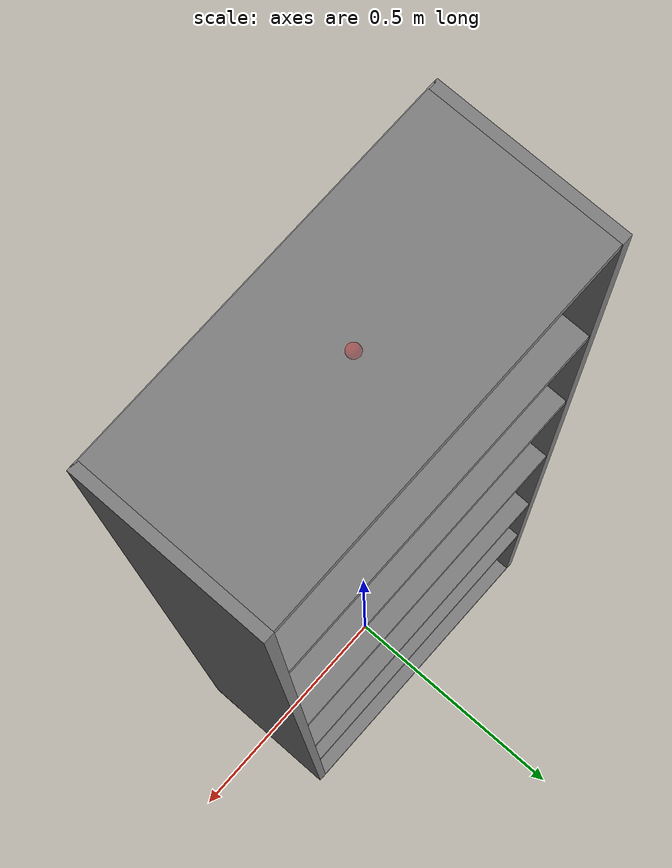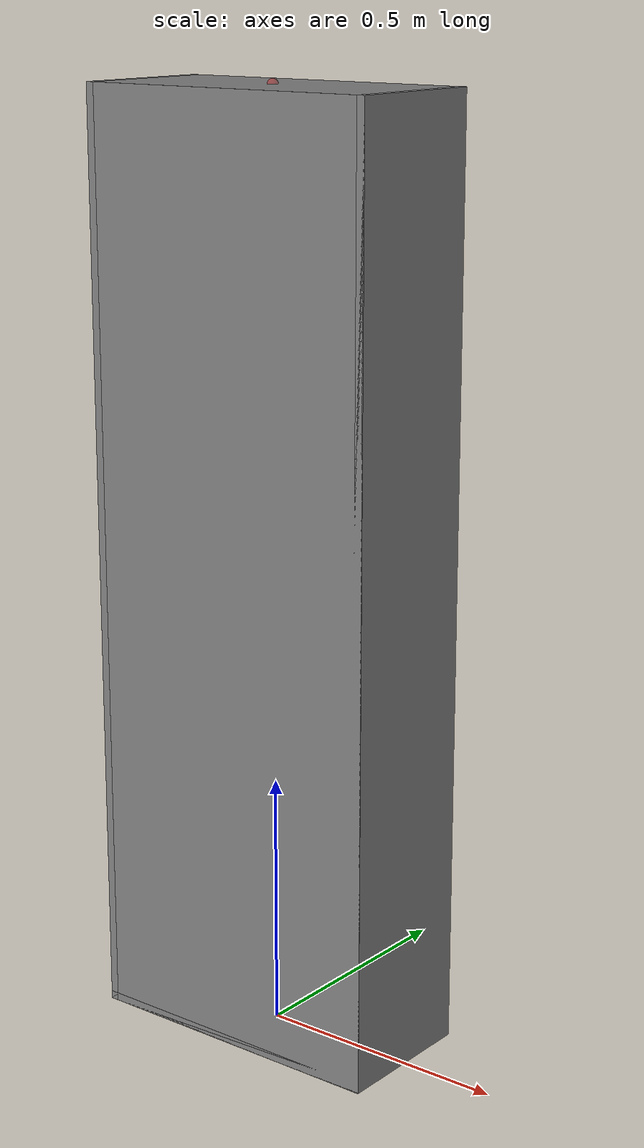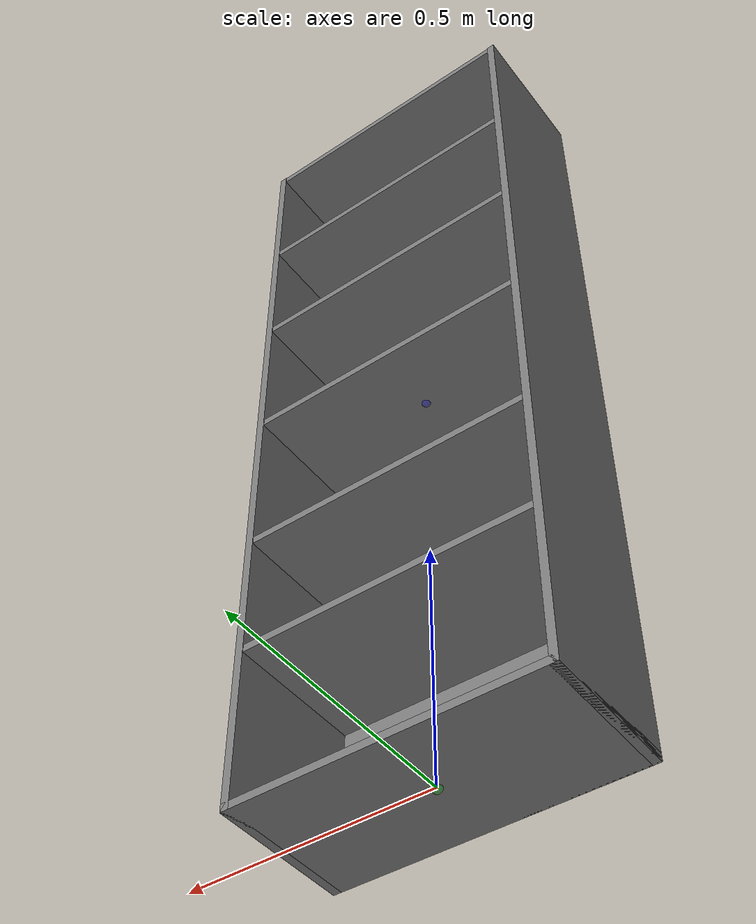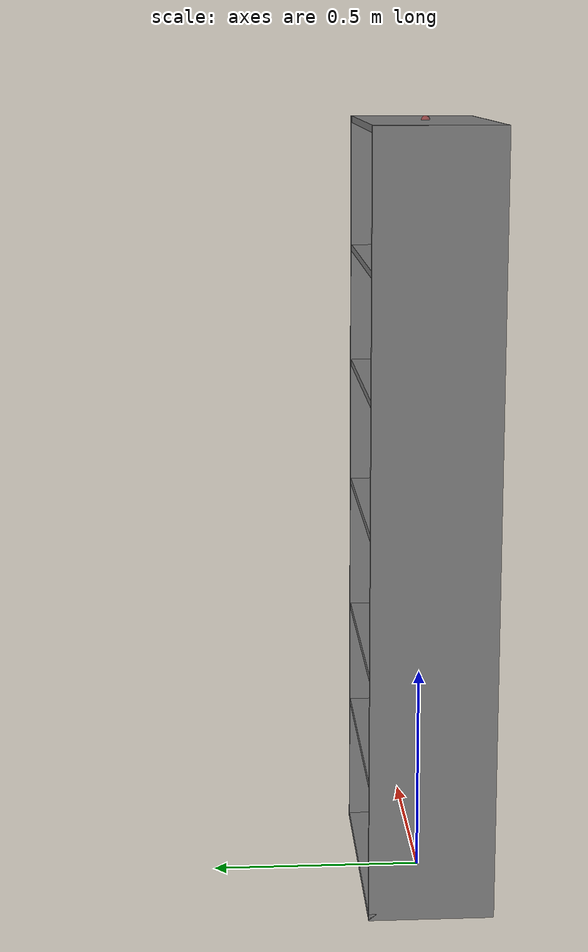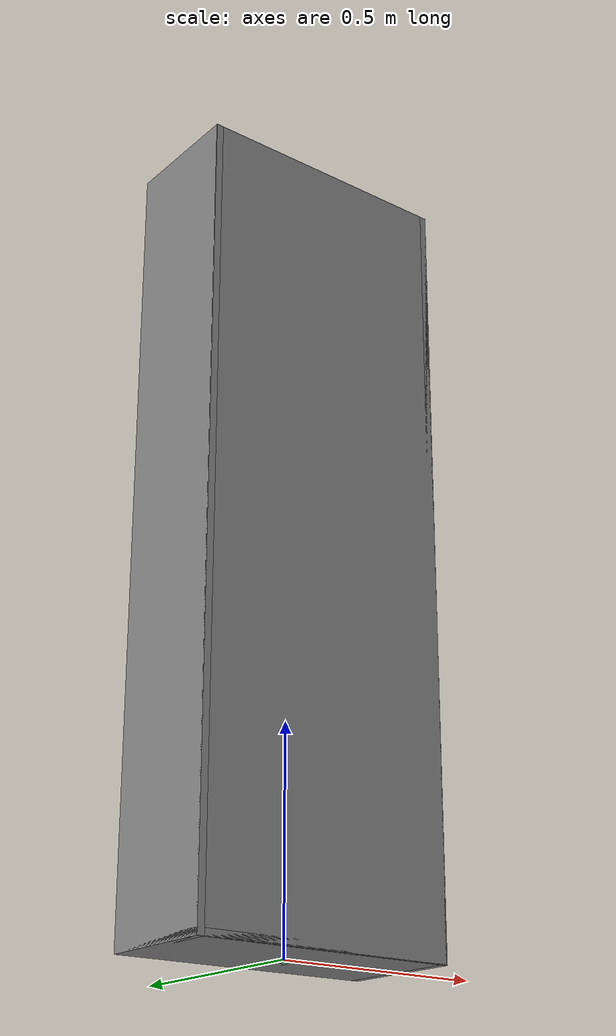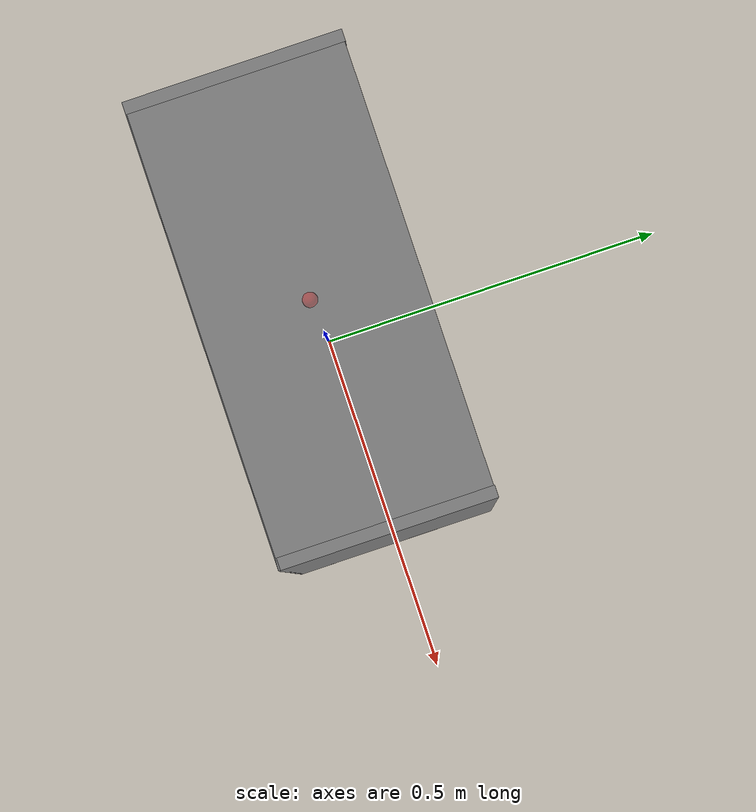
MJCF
<mujoco model="lab_shelf">
  <default>
    <default class="visual">
      <geom group="1" type="box" contype="0" conaffinity="0" density="100"/>
    </default>
    <default class="collision">
      <geom group="0" type="box" density="100" solimp="0.95 0.98 0.001" solref="0.004 1" rgba="1 1 1 0.25"/>
    </default>
    <default class="spawn">
      <geom group="1" rgba="1 1 1 0" contype="0" conaffinity="0" density="0" mass="0"/>
    </default>
  </default>

  <asset>
    <texture name="white_tex" builtin="flat" rgb1="1 1 1" rgb2="1 1 1" width="32" height="32"/>
    <material name="white_mat" texture="white_tex" shininess="0.2" reflectance="0.05" rgba="1 1 1 1"/>
  </asset>

  <!-- H = 1.80797 m; shelf z tops = 0.3317, 0.5888, 0.9159, 1.2174, 1.5001, 1.8080 -->
  <worldbody>
    <body>
      <body name="object">
        <!-- Sides (centered at H/2) -->
        <geom class="collision" name="side_left" size="0.008255 0.146050 0.903985" pos="-0.302895 0 0.903985"/>
        <geom class="visual"   name="side_left_vis" size="0.008255 0.146050 0.903985" pos="-0.302895 0 0.903985"/>
        <geom class="collision" name="side_right" size="0.008255 0.146050 0.903985" pos="0.302895 0 0.903985"/>
        <geom class="visual"   name="side_right_vis" size="0.008255 0.146050 0.903985" pos="0.302895 0 0.903985"/>

        <!-- Bottom panel (sits on floor) -->
        <geom class="collision" name="bottom" size="0.311150 0.146050 0.007938" pos="0 0 0.007938"/>
        <geom class="visual"   name="bottom_vis" size="0.311150 0.146050 0.007938" pos="0 0 0.007938"/>

        <!-- Back panel -->
        <geom class="collision" name="back" size="0.311150 0.001270 0.903985" pos="0 -0.144780 0.903985"/>
        <geom class="visual"   name="back_vis" size="0.311150 0.001270 0.903985" pos="0 -0.144780 0.903985"/>

        <!-- Interior shelves (6 total) -->
        <!-- Shelf half-sizes: x=0.294640, y=0.144780, z=0.007938 -->
        <geom class="collision" name="level_1" size="0.294640 0.144780 0.007938" pos="0 0 0.323787"/>
        <geom class="visual"   name="level_1_vis" size="0.294640 0.144780 0.007938" pos="0 0 0.323787"/>

        <geom class="collision" name="level_2" size="0.294640 0.144780 0.007938" pos="0 0 0.580834"/>
        <geom class="visual"   name="level_2_vis" size="0.294640 0.144780 0.007938" pos="0 0 0.580834"/>

        <geom class="collision" name="level_3" size="0.294640 0.144780 0.007938" pos="0 0 0.907987"/>
        <geom class="visual"   name="level_3_vis" size="0.294640 0.144780 0.007938" pos="0 0 0.907987"/>

        <geom class="collision" name="level_4" size="0.294640 0.144780 0.007938" pos="0 0 1.209485"/>
        <geom class="visual"   name="level_4_vis" size="0.294640 0.144780 0.007938" pos="0 0 1.209485"/>

        <geom class="collision" name="level_5" size="0.294640 0.144780 0.007938" pos="0 0 1.492187"/>
        <geom class="visual"   name="level_5_vis" size="0.294640 0.144780 0.007938" pos="0 0 1.492187"/>

        <geom class="collision" name="level_6" size="0.294640 0.144780 0.007938" pos="0 0 1.800035"/>
        <geom class="visual"   name="level_6_vis" size="0.294640 0.144780 0.007938" pos="0 0 1.800035"/>

        <!-- Spawn Zones (between shelves, w/ 5mm clearance each side) -->
        <geom class="spawn" name="spawn_1" type="box" size="0.28 0.14 0.115587" pos="0 0 0.452311"/>
        <geom class="spawn" name="spawn_2" type="box" size="0.28 0.14 0.150639" pos="0 0 0.744410"/>
        <geom class="spawn" name="spawn_3" type="box" size="0.28 0.14 0.137812" pos="0 0 1.058736"/>
        <geom class="spawn" name="spawn_4" type="box" size="0.28 0.14 0.128414" pos="0 0 1.350836"/>
        <geom class="spawn" name="spawn_5" type="box" size="0.28 0.14 0.140987" pos="0 0 1.646111"/>
      </body>

      <!-- Sites for reference points -->
      <site name="top_site" pos="0 0 1.807972" size="0.01 0.01 0.01" rgba="1 0 0 0.3"/>
      <site name="bottom_site" pos="0 0 0.000000" size="0.01 0.01 0.01" rgba="0 1 0 0.3"/>
      <site name="horizontal_radius_site" pos="0 0 0.903985" size="0.01 0.01 0.01" rgba="0 0 1 0.3"/>
    </body>
  </worldbody>
</mujoco>
